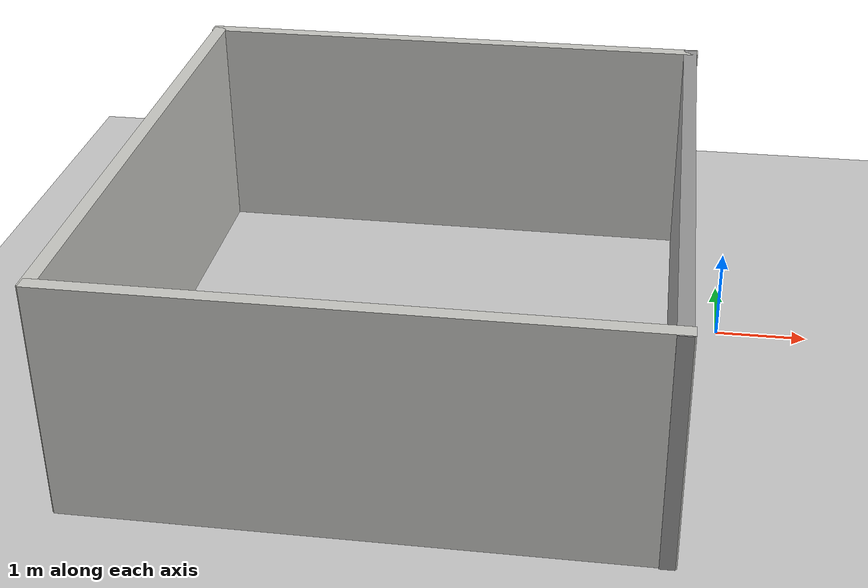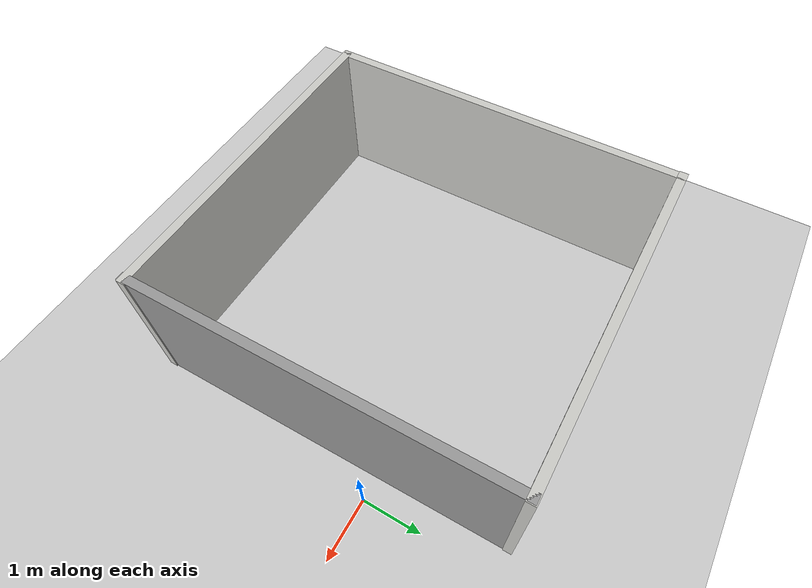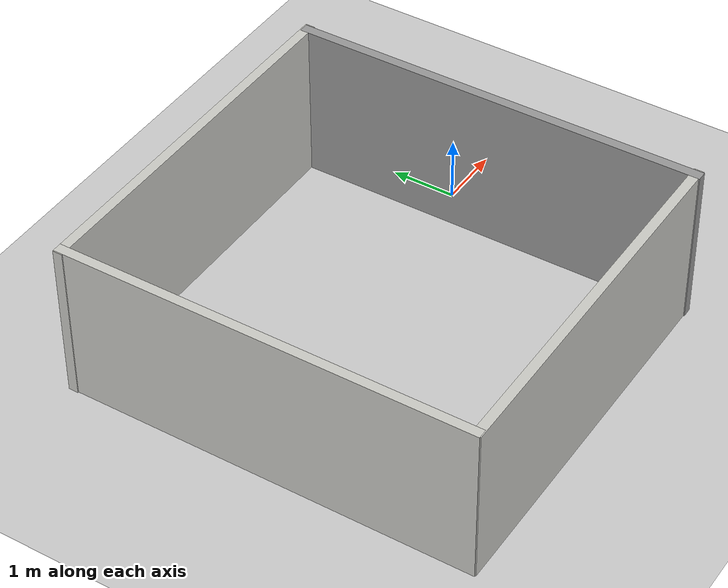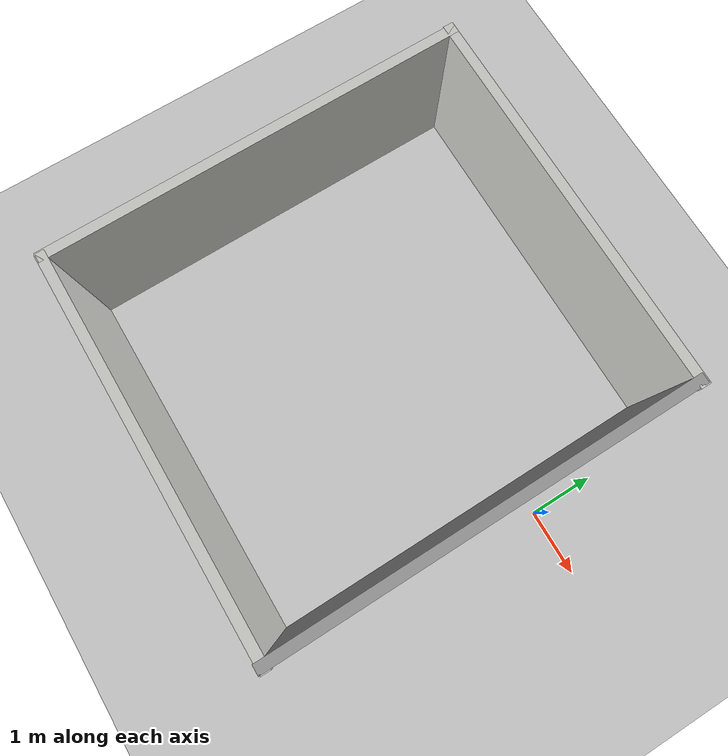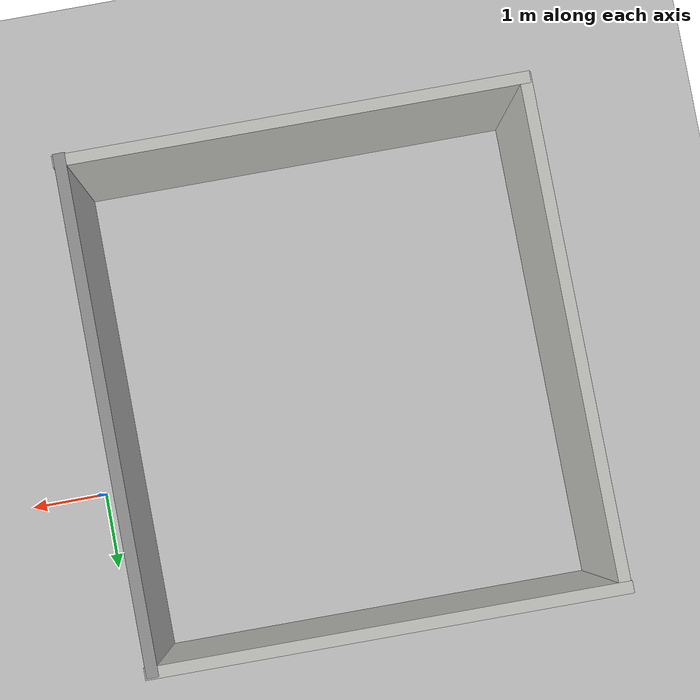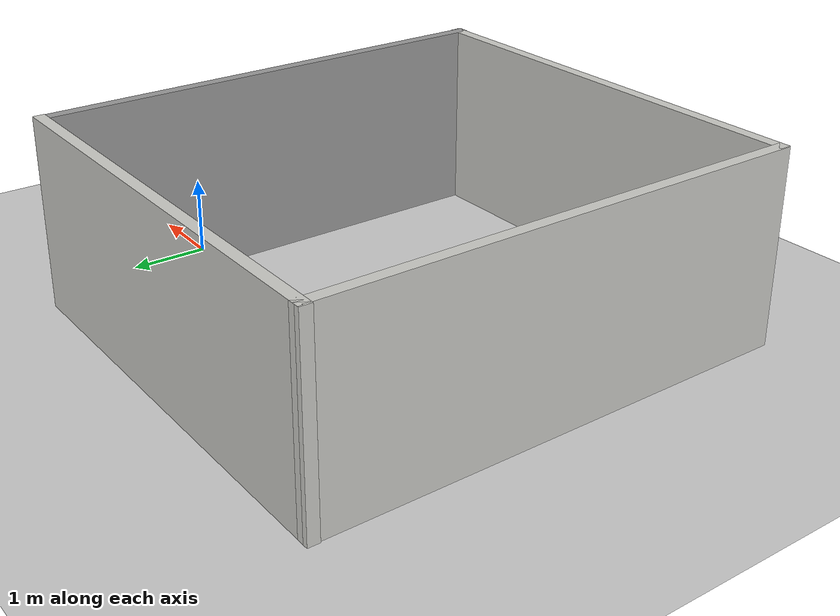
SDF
<sdf version="1.7">
 <world name="default">
  <model name="ground_plane">
   <static>1</static>
   <link name="link">
    <collision name="collision">
     <geometry><plane><normal>0 0 1</normal><size>100 100</size></plane></geometry>
     <surface><friction><ode><mu>100</mu><mu2>50</mu2></ode></friction></surface>
    </collision>
    <visual name="visual">
     <cast_shadows>0</cast_shadows>
     <geometry><plane><normal>0 0 1</normal><size>100 100</size></plane></geometry>
     <material>
      <script><uri>file://media/materials/scripts/gazebo.material</uri><name>Gazebo/Grey</name></script>
     </material>
    </visual>
   </link>
  </model>
  <light name="sun" type="directional">
   <pose>0 0 10 0 -0 0</pose>
   <diffuse>0.8 0.8 0.8 1</diffuse>
   <specular>0.2 0.2 0.2 1</specular>
   <attenuation>
    <range>1000</range>
    <constant>0.9</constant>
    <linear>0.01</linear>
    <quadratic>0.001</quadratic>
   </attenuation>
   <direction>-0.5 0.1 -0.9</direction>
   <spot><inner_angle>0</inner_angle><outer_angle>0</outer_angle><falloff>0</falloff></spot>
  </light>
  <scene><shadows>0</shadows><ambient>0.4 0.4 0.4 1</ambient><background>0.7 0.7 0.7 1</background></scene>
  <physics type="ode">
   <real_time_update_rate>1000</real_time_update_rate>
   <max_step_size>0.001</max_step_size>
   <real_time_factor>1</real_time_factor>
   <ode>
    <solver>
     <type>quick</type>
     <iters>150</iters>
     <precon_iters>0</precon_iters>
     <sor>1.4</sor>
     <use_dynamic_moi_rescaling>1</use_dynamic_moi_rescaling>
    </solver>
    <constraints>
     <cfm>1e-05</cfm>
     <erp>0.2</erp>
     <contact_max_correcting_vel>2000</contact_max_correcting_vel>
     <contact_surface_layer>0.01</contact_surface_layer>
    </constraints>
   </ode>
  </physics>
  <gravity>0 0 -9.8</gravity>
  <magnetic_field>6e-06 2.3e-05 -4.2e-05</magnetic_field>
  <atmosphere type="adiabatic"/>
  <audio><device>default</device></audio>
  <spherical_coordinates>
   <surface_model>EARTH_WGS84</surface_model>
   <latitude_deg>0</latitude_deg>
   <longitude_deg>0</longitude_deg>
   <elevation>0</elevation>
   <heading_deg>0</heading_deg>
  </spherical_coordinates>
  <model name="maze">
   <pose>-3.1557 -0.920682 0 0 -0 0</pose>
   <link name="Wall_0">
    <collision name="Wall_0_Collision">
     <geometry><box><size>5.89453 0.15 2.5</size></box></geometry>
     <pose>0 0 1.25 0 -0 0</pose>
    </collision>
    <visual name="Wall_0_Visual">
     <pose>0 0 1.25 0 -0 0</pose>
     <geometry><box><size>5.89453 0.15 2.5</size></box></geometry>
     <material>
      <script><uri>file://media/materials/scripts/gazebo.material</uri><name>Gazebo/CeilingTiled</name></script>
      <ambient>1 1 1 1</ambient>
     </material>
     <meta><layer>0</layer></meta>
    </visual>
    <pose>-0.147401 -3.12884 0 0 -0 0</pose>
   </link>
   <link name="Wall_1">
    <collision name="Wall_1_Collision">
     <geometry><box><size>6.40792 0.15 2.5</size></box></geometry>
     <pose>0 0 1.25 0 -0 0</pose>
    </collision>
    <visual name="Wall_1_Visual">
     <pose>0 0 1.25 0 -0 0</pose>
     <geometry><box><size>6.40792 0.15 2.5</size></box></geometry>
     <material>
      <script><uri>file://media/materials/scripts/gazebo.material</uri><name>Gazebo/Grey</name></script>
      <ambient>1 1 1 1</ambient>
     </material>
     <meta><layer>0</layer></meta>
    </visual>
    <pose>2.68684 -0.015174 0 0 -0 1.57809</pose>
   </link>
   <link name="Wall_2">
    <collision name="Wall_2_Collision">
     <geometry><box><size>5.90976 0.15 2.5</size></box></geometry>
     <pose>0 0 1.25 0 -0 0</pose>
    </collision>
    <visual name="Wall_2_Visual">
     <pose>0 0 1.25 0 -0 0</pose>
     <geometry><box><size>5.90976 0.15 2.5</size></box></geometry>
     <material>
      <script><uri>file://media/materials/scripts/gazebo.material</uri><name>Gazebo/CeilingTiled</name></script>
      <ambient>1 1 1 1</ambient>
     </material>
     <meta><layer>0</layer></meta>
    </visual>
    <pose>-0.200632 3.13652 0 0 -0 3.13895</pose>
   </link>
   <link name="Wall_3">
    <collision name="Wall_3_Collision">
     <geometry><box><size>6.40805 0.15 2.5</size></box></geometry>
     <pose>0 0 1.25 0 -0 0</pose>
    </collision>
    <visual name="Wall_3_Visual">
     <pose>0 0 1.25 0 -0 0</pose>
     <geometry><box><size>6.40805 0.15 2.5</size></box></geometry>
     <material>
      <script><uri>file://media/materials/scripts/gazebo.material</uri><name>Gazebo/CeilingTiled</name></script>
      <ambient>1 1 1 1</ambient>
     </material>
     <meta><layer>0</layer></meta>
    </visual>
    <pose>-3.05009 0.015244 0 0 -0 -1.56594</pose>
   </link>
   <static>1</static>
  </model>
 </world>
</sdf>
